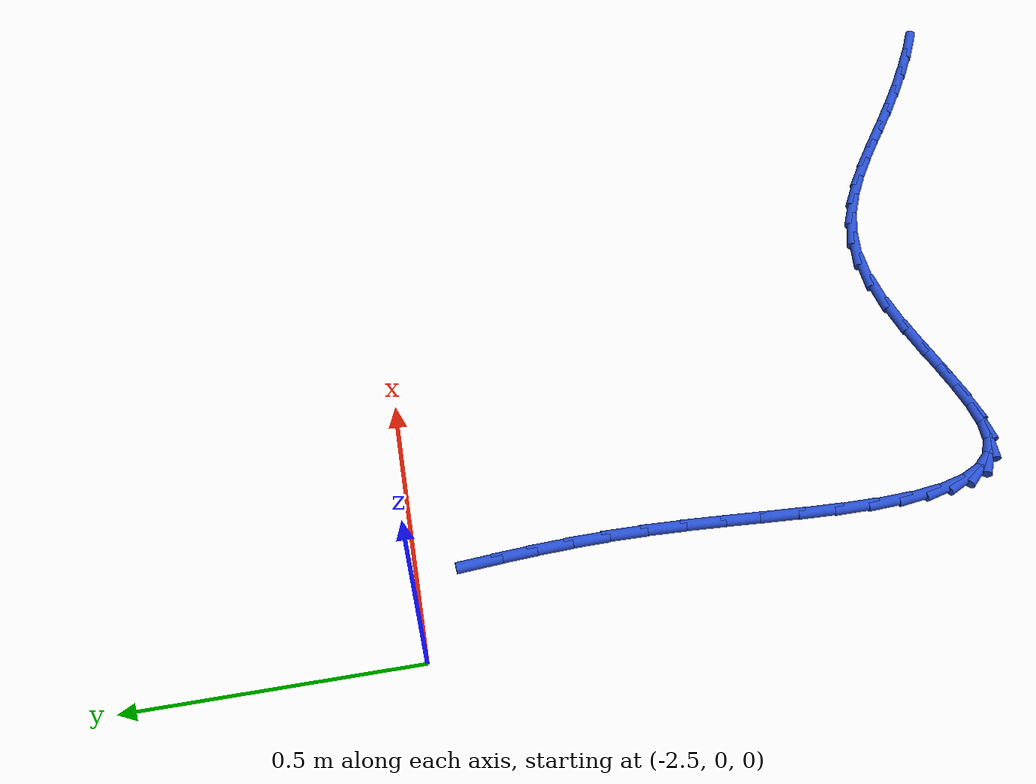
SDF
<sdf version="1.6">
 <world name="default">
  <model name="ground_plane">
   <static>1</static>
   <link name="link">
    <collision name="collision">
     <geometry><plane><normal>0 0 1</normal><size>100 100</size></plane></geometry>
     <surface><friction><ode><mu>100</mu><mu2>50</mu2></ode></friction></surface>
    </collision>
    <visual name="visual">
     <cast_shadows>0</cast_shadows>
     <geometry><plane><normal>0 0 1</normal><size>100 100</size></plane></geometry>
     <material>
      <script><uri>file://media/materials/scripts/gazebo.material</uri><name>Gazebo/WhiteGlow</name></script>
     </material>
    </visual>
   </link>
  </model>
  <model name="line">
   <link name="link_74">
    <pose>-2.3392976931830742 -0.10666497739842304 0.01 0 1.57 -1.4933494946444272</pose>
    <collision name="collision">
     <geometry><cylinder><radius>0.01</radius><length>0.08</length></cylinder></geometry>
    </collision>
    <visual name="visual">
     <material>
      <script><name>Gazebo/Blue</name><uri>file://media/materials/scripts/gazebo.material</uri></script>
     </material>
     <geometry><cylinder><radius>0.01</radius><length>0.08</length></cylinder></geometry>
    </visual>
   </link>
   <link name="link_75">
    <pose>-2.334602497027382 -0.16716848656856312 0.01 0 1.57 -1.5092627261936897</pose>
    <collision name="collision">
     <geometry><cylinder><radius>0.01</radius><length>0.08</length></cylinder></geometry>
    </collision>
    <visual name="visual">
     <material>
      <script><name>Gazebo/Blue</name><uri>file://media/materials/scripts/gazebo.material</uri></script>
     </material>
     <geometry><cylinder><radius>0.01</radius><length>0.08</length></cylinder></geometry>
    </visual>
   </link>
   <link name="link_76">
    <pose>-2.330763917438993 -0.22947157868022855 0.01 0 1.57 -1.530009776665142</pose>
    <collision name="collision">
     <geometry><cylinder><radius>0.01</radius><length>0.08</length></cylinder></geometry>
    </collision>
    <visual name="visual">
     <material>
      <script><name>Gazebo/Blue</name><uri>file://media/materials/scripts/gazebo.material</uri></script>
     </material>
     <geometry><cylinder><radius>0.01</radius><length>0.08</length></cylinder></geometry>
    </visual>
   </link>
   <link name="link_77">
    <pose>-2.3281464975574853 -0.29360959269813164 0.01 0 1.57 -1.5551674827939042</pose>
    <collision name="collision">
     <geometry><cylinder><radius>0.01</radius><length>0.08</length></cylinder></geometry>
    </collision>
    <visual name="visual">
     <material>
      <script><name>Gazebo/Blue</name><uri>file://media/materials/scripts/gazebo.material</uri></script>
     </material>
     <geometry><cylinder><radius>0.01</radius><length>0.08</length></cylinder></geometry>
    </visual>
   </link>
   <link name="link_78">
    <pose>-2.327114780522441 -0.3596178675869841 0.01 0 1.57 1.55745078624713</pose>
    <collision name="collision">
     <geometry><cylinder><radius>0.01</radius><length>0.08</length></cylinder></geometry>
    </collision>
    <visual name="visual">
     <material>
      <script><name>Gazebo/Blue</name><uri>file://media/materials/scripts/gazebo.material</uri></script>
     </material>
     <geometry><cylinder><radius>0.01</radius><length>0.08</length></cylinder></geometry>
    </visual>
   </link>
   <link name="link_79">
    <pose>-2.328021019264337 -0.4275195712757638 0.01 0 1.57 1.5316532512382517</pose>
    <collision name="collision">
     <geometry><cylinder><radius>0.01</radius><length>0.08</length></cylinder></geometry>
    </collision>
    <visual name="visual">
     <material>
      <script><name>Gazebo/Blue</name><uri>file://media/materials/scripts/gazebo.material</uri></script>
     </material>
     <geometry><cylinder><radius>0.01</radius><length>0.08</length></cylinder></geometry>
    </visual>
   </link>
   <link name="link_80">
    <pose>-2.3307366720785 -0.49686173913643933 0.01 0 1.57 1.5167643529252266</pose>
    <collision name="collision">
     <geometry><cylinder><radius>0.01</radius><length>0.08</length></cylinder></geometry>
    </collision>
    <visual name="visual">
     <material>
      <script><name>Gazebo/Blue</name><uri>file://media/materials/scripts/gazebo.material</uri></script>
     </material>
     <geometry><cylinder><radius>0.01</radius><length>0.08</length></cylinder></geometry>
    </visual>
   </link>
   <link name="link_81">
    <pose>-2.33450687948605 -0.5665711619260696 0.01 0 1.57 1.5124554049348993</pose>
    <collision name="collision">
     <geometry><cylinder><radius>0.01</radius><length>0.08</length></cylinder></geometry>
    </collision>
    <visual name="visual">
     <material>
      <script><name>Gazebo/Blue</name><uri>file://media/materials/scripts/gazebo.material</uri></script>
     </material>
     <geometry><cylinder><radius>0.01</radius><length>0.08</length></cylinder></geometry>
    </visual>
   </link>
   <link name="link_82">
    <pose>-2.338534747785223 -0.6355330037683017 0.01 0 1.57 1.518851066210437</pose>
    <collision name="collision">
     <geometry><cylinder><radius>0.01</radius><length>0.08</length></cylinder></geometry>
    </collision>
    <visual name="visual">
     <material>
      <script><name>Gazebo/Blue</name><uri>file://media/materials/scripts/gazebo.material</uri></script>
     </material>
     <geometry><cylinder><radius>0.01</radius><length>0.08</length></cylinder></geometry>
    </visual>
   </link>
   <link name="link_83">
    <pose>-2.342023383274261 -0.7026324287867841 0.01 0 1.57 1.5372400557956143</pose>
    <collision name="collision">
     <geometry><cylinder><radius>0.01</radius><length>0.08</length></cylinder></geometry>
    </collision>
    <visual name="visual">
     <material>
      <script><name>Gazebo/Blue</name><uri>file://media/materials/scripts/gazebo.material</uri></script>
     </material>
     <geometry><cylinder><radius>0.01</radius><length>0.08</length></cylinder></geometry>
    </visual>
   </link>
   <link name="link_84">
    <pose>-2.3441758922513993 -0.7667546011051674 0.01 0 1.57 1.570471676859739</pose>
    <collision name="collision">
     <geometry><cylinder><radius>0.01</radius><length>0.08</length></cylinder></geometry>
    </collision>
    <visual name="visual">
     <material>
      <script><name>Gazebo/Blue</name><uri>file://media/materials/scripts/gazebo.material</uri></script>
     </material>
     <geometry><cylinder><radius>0.01</radius><length>0.08</length></cylinder></geometry>
    </visual>
   </link>
   <link name="link_85">
    <pose>-2.3441953810148783 -0.8267846848470987 0.01 0 1.57 -1.5177586020661384</pose>
    <collision name="collision">
     <geometry><cylinder><radius>0.01</radius><length>0.08</length></cylinder></geometry>
    </collision>
    <visual name="visual">
     <material>
      <script><name>Gazebo/Blue</name><uri>file://media/materials/scripts/gazebo.material</uri></script>
     </material>
     <geometry><cylinder><radius>0.01</radius><length>0.08</length></cylinder></geometry>
    </visual>
   </link>
   <link name="link_86">
    <pose>-2.3412849558629354 -0.8816078441362282 0.01 0 1.57 -1.4347948766053573</pose>
    <collision name="collision">
     <geometry><cylinder><radius>0.01</radius><length>0.08</length></cylinder></geometry>
    </collision>
    <visual name="visual">
     <material>
      <script><name>Gazebo/Blue</name><uri>file://media/materials/scripts/gazebo.material</uri></script>
     </material>
     <geometry><cylinder><radius>0.01</radius><length>0.08</length></cylinder></geometry>
    </visual>
   </link>
   <link name="link_87">
    <pose>-2.3346477230938096 -0.9301092430962045 0.01 0 1.57 -1.3054184264576614</pose>
    <collision name="collision">
     <geometry><cylinder><radius>0.01</radius><length>0.08</length></cylinder></geometry>
    </collision>
    <visual name="visual">
     <material>
      <script><name>Gazebo/Blue</name><uri>file://media/materials/scripts/gazebo.material</uri></script>
     </material>
     <geometry><cylinder><radius>0.01</radius><length>0.08</length></cylinder></geometry>
    </visual>
   </link>
   <link name="link_88">
    <pose>-2.32348678900574 -0.9711740458506755 0.01 0 1.57 -1.1016316950433602</pose>
    <collision name="collision">
     <geometry><cylinder><radius>0.01</radius><length>0.08</length></cylinder></geometry>
    </collision>
    <visual name="visual">
     <material>
      <script><name>Gazebo/Blue</name><uri>file://media/materials/scripts/gazebo.material</uri></script>
     </material>
     <geometry><cylinder><radius>0.01</radius><length>0.08</length></cylinder></geometry>
    </visual>
   </link>
   <link name="link_89">
    <pose>-2.3070052598969633 -1.003687416523291 0.01 0 1.57 -0.7908569883966381</pose>
    <collision name="collision">
     <geometry><cylinder><radius>0.01</radius><length>0.08</length></cylinder></geometry>
    </collision>
    <visual name="visual">
     <material>
      <script><name>Gazebo/Blue</name><uri>file://media/materials/scripts/gazebo.material</uri></script>
     </material>
     <geometry><cylinder><radius>0.01</radius><length>0.08</length></cylinder></geometry>
    </visual>
   </link>
   <link name="link_90">
    <pose>-2.2844062420657187 -1.0265345192376993 0.01 0 1.57 -0.3880994830792183</pose>
    <collision name="collision">
     <geometry><cylinder><radius>0.01</radius><length>0.08</length></cylinder></geometry>
    </collision>
    <visual name="visual">
     <material>
      <script><name>Gazebo/Blue</name><uri>file://media/materials/scripts/gazebo.material</uri></script>
     </material>
     <geometry><cylinder><radius>0.01</radius><length>0.08</length></cylinder></geometry>
    </visual>
   </link>
   <link name="link_91">
    <pose>-2.2548928931723404 -1.038600609432451 0.01 0 1.57 -0.023858899915953167</pose>
    <collision name="collision">
     <geometry><cylinder><radius>0.01</radius><length>0.08</length></cylinder></geometry>
    </collision>
    <visual name="visual">
     <material>
      <script><name>Gazebo/Blue</name><uri>file://media/materials/scripts/gazebo.material</uri></script>
     </material>
     <geometry><cylinder><radius>0.01</radius><length>0.08</length></cylinder></geometry>
    </visual>
   </link>
   <link name="link_92">
    <pose>-2.2180668612019536 -1.0394794048004357 0.01 0 1.57 0.189862802182624</pose>
    <collision name="collision">
     <geometry><cylinder><radius>0.01</radius><length>0.08</length></cylinder></geometry>
    </collision>
    <visual name="visual">
     <material>
      <script><name>Gazebo/Blue</name><uri>file://media/materials/scripts/gazebo.material</uri></script>
     </material>
     <geometry><cylinder><radius>0.01</radius><length>0.08</length></cylinder></geometry>
    </visual>
   </link>
   <link name="link_93">
    <pose>-2.17488930269319 -1.0311816465723187 0.01 0 1.57 0.30027140485685966</pose>
    <collision name="collision">
     <geometry><cylinder><radius>0.01</radius><length>0.08</length></cylinder></geometry>
    </collision>
    <visual name="visual">
     <material>
      <script><name>Gazebo/Blue</name><uri>file://media/materials/scripts/gazebo.material</uri></script>
     </material>
     <geometry><cylinder><radius>0.01</radius><length>0.08</length></cylinder></geometry>
    </visual>
   </link>
   <link name="link_94">
    <pose>-2.126611046134841 -1.0162330737843865 0.01 0 1.57 0.35076825966194974</pose>
    <collision name="collision">
     <geometry><cylinder><radius>0.01</radius><length>0.08</length></cylinder></geometry>
    </collision>
    <visual name="visual">
     <material>
      <script><name>Gazebo/Blue</name><uri>file://media/materials/scripts/gazebo.material</uri></script>
     </material>
     <geometry><cylinder><radius>0.01</radius><length>0.08</length></cylinder></geometry>
    </visual>
   </link>
   <link name="link_95">
    <pose>-2.0744829200156993 -0.9971594254729241 0.01 0 1.57 0.3611762068760858</pose>
    <collision name="collision">
     <geometry><cylinder><radius>0.01</radius><length>0.08</length></cylinder></geometry>
    </collision>
    <visual name="visual">
     <material>
      <script><name>Gazebo/Blue</name><uri>file://media/materials/scripts/gazebo.material</uri></script>
     </material>
     <geometry><cylinder><radius>0.01</radius><length>0.08</length></cylinder></geometry>
    </visual>
   </link>
   <link name="link_96">
    <pose>-2.0197557528245578 -0.9764864406742187 0.01 0 1.57 0.33858314628906944</pose>
    <collision name="collision">
     <geometry><cylinder><radius>0.01</radius><length>0.08</length></cylinder></geometry>
    </collision>
    <visual name="visual">
     <material>
      <script><name>Gazebo/Blue</name><uri>file://media/materials/scripts/gazebo.material</uri></script>
     </material>
     <geometry><cylinder><radius>0.01</radius><length>0.08</length></cylinder></geometry>
    </visual>
   </link>
   <link name="link_97">
    <pose>-1.963680373050208 -0.9567398584245557 0.01 0 1.57 0.2823286744295047</pose>
    <collision name="collision">
     <geometry><cylinder><radius>0.01</radius><length>0.08</length></cylinder></geometry>
    </collision>
    <visual name="visual">
     <material>
      <script><name>Gazebo/Blue</name><uri>file://media/materials/scripts/gazebo.material</uri></script>
     </material>
     <geometry><cylinder><radius>0.01</radius><length>0.08</length></cylinder></geometry>
    </visual>
   </link>
   <link name="link_98">
    <pose>-1.9075076091814436 -0.9404454177602213 0.01 0 1.57 0.18535563415789003</pose>
    <collision name="collision">
     <geometry><cylinder><radius>0.01</radius><length>0.08</length></cylinder></geometry>
    </collision>
    <visual name="visual">
     <material>
      <script><name>Gazebo/Blue</name><uri>file://media/materials/scripts/gazebo.material</uri></script>
     </material>
     <geometry><cylinder><radius>0.01</radius><length>0.08</length></cylinder></geometry>
    </visual>
   </link>
   <link name="link_99">
    <pose>-1.8524882897070545 -0.930128857717501 0.01 0 1.57 0.03767120536752102</pose>
    <collision name="collision">
     <geometry><cylinder><radius>0.01</radius><length>0.08</length></cylinder></geometry>
    </collision>
    <visual name="visual">
     <material>
      <script><name>Gazebo/Blue</name><uri>file://media/materials/scripts/gazebo.material</uri></script>
     </material>
     <geometry><cylinder><radius>0.01</radius><length>0.08</length></cylinder></geometry>
    </visual>
   </link>
   <link name="link_100">
    <pose>-1.79979146486451 -0.9281427652167378 0.01 0 1.57 -0.12991750881663697</pose>
    <collision name="collision">
     <geometry><cylinder><radius>0.01</radius><length>0.08</length></cylinder></geometry>
    </collision>
    <visual name="visual">
     <material>
      <script><name>Gazebo/Blue</name><uri>file://media/materials/scripts/gazebo.material</uri></script>
     </material>
     <geometry><cylinder><radius>0.01</radius><length>0.08</length></cylinder></geometry>
    </visual>
   </link>
   <link name="link_101">
    <pose>-1.749577228643055 -0.9347034267995861 0.01 0 1.57 -0.2801842022449353</pose>
    <collision name="collision">
     <geometry><cylinder><radius>0.01</radius><length>0.08</length></cylinder></geometry>
    </collision>
    <visual name="visual">
     <material>
      <script><name>Gazebo/Blue</name><uri>file://media/materials/scripts/gazebo.material</uri></script>
     </material>
     <geometry><cylinder><radius>0.01</radius><length>0.08</length></cylinder></geometry>
    </visual>
   </link>
   <link name="link_102">
    <pose>-1.7013259467012993 -0.9485879150747873 0.01 0 1.57 -0.4029506564800169</pose>
    <collision name="collision">
     <geometry><cylinder><radius>0.01</radius><length>0.08</length></cylinder></geometry>
    </collision>
    <visual name="visual">
     <material>
      <script><name>Gazebo/Blue</name><uri>file://media/materials/scripts/gazebo.material</uri></script>
     </material>
     <geometry><cylinder><radius>0.01</radius><length>0.08</length></cylinder></geometry>
    </visual>
   </link>
   <link name="link_103">
    <pose>-1.654505289316738 -0.9685464222511327 0.01 0 1.57 -0.4948743058353372</pose>
    <collision name="collision">
     <geometry><cylinder><radius>0.01</radius><length>0.08</length></cylinder></geometry>
    </collision>
    <visual name="visual">
     <material>
      <script><name>Gazebo/Blue</name><uri>file://media/materials/scripts/gazebo.material</uri></script>
     </material>
     <geometry><cylinder><radius>0.01</radius><length>0.08</length></cylinder></geometry>
    </visual>
   </link>
   <link name="link_104">
    <pose>-1.608582926766866 -0.9933291405374126 0.01 0 1.57 -0.5567720808523011</pose>
    <collision name="collision">
     <geometry><cylinder><radius>0.01</radius><length>0.08</length></cylinder></geometry>
    </collision>
    <visual name="visual">
     <material>
      <script><name>Gazebo/Blue</name><uri>file://media/materials/scripts/gazebo.material</uri></script>
     </material>
     <geometry><cylinder><radius>0.01</radius><length>0.08</length></cylinder></geometry>
    </visual>
   </link>
   <link name="link_105">
    <pose>-1.5630265293291774 -1.0216862621424194 0.01 0 1.57 -0.5910229041675557</pose>
    <collision name="collision">
     <geometry><cylinder><radius>0.01</radius><length>0.08</length></cylinder></geometry>
    </collision>
    <visual name="visual">
     <material>
      <script><name>Gazebo/Blue</name><uri>file://media/materials/scripts/gazebo.material</uri></script>
     </material>
     <geometry><cylinder><radius>0.01</radius><length>0.08</length></cylinder></geometry>
    </visual>
   </link>
   <link name="link_106">
    <pose>-1.5173037672811673 -1.0523679792749427 0.01 0 1.57 -0.5999688595193906</pose>
    <collision name="collision">
     <geometry><cylinder><radius>0.01</radius><length>0.08</length></cylinder></geometry>
    </collision>
    <visual name="visual">
     <material>
      <script><name>Gazebo/Blue</name><uri>file://media/materials/scripts/gazebo.material</uri></script>
     </material>
     <geometry><cylinder><radius>0.01</radius><length>0.08</length></cylinder></geometry>
    </visual>
   </link>
   <link name="link_107">
    <pose>-1.4708823109003302 -1.0841244841437756 0.01 0 1.57 -0.5853732621717056</pose>
    <collision name="collision">
     <geometry><cylinder><radius>0.01</radius><length>0.08</length></cylinder></geometry>
    </collision>
    <visual name="visual">
     <material>
      <script><name>Gazebo/Blue</name><uri>file://media/materials/scripts/gazebo.material</uri></script>
     </material>
     <geometry><cylinder><radius>0.01</radius><length>0.08</length></cylinder></geometry>
    </visual>
   </link>
   <link name="link_108">
    <pose>-1.4232336062238962 -1.1157096367020578 0.01 0 1.57 -0.555068356757433</pose>
    <collision name="collision">
     <geometry><cylinder><radius>0.01</radius><length>0.08</length></cylinder></geometry>
    </collision>
    <visual name="visual">
     <material>
      <script><name>Gazebo/Blue</name><uri>file://media/materials/scripts/gazebo.material</uri></script>
     </material>
     <geometry><cylinder><radius>0.01</radius><length>0.08</length></cylinder></geometry>
    </visual>
   </link>
   <link name="link_109">
    <pose>-1.3741232267944927 -1.1461630101293185 0.01 0 1.57 -0.5206408994084673</pose>
    <collision name="collision">
     <geometry><cylinder><radius>0.01</radius><length>0.08</length></cylinder></geometry>
    </collision>
    <visual name="visual">
     <material>
      <script><name>Gazebo/Blue</name><uri>file://media/materials/scripts/gazebo.material</uri></script>
     </material>
     <geometry><cylinder><radius>0.01</radius><length>0.08</length></cylinder></geometry>
    </visual>
   </link>
   <link name="link_110">
    <pose>-1.3238164442809537 -1.1750095805723006 0.01 0 1.57 -0.4824891064251065</pose>
    <collision name="collision">
     <geometry><cylinder><radius>0.01</radius><length>0.08</length></cylinder></geometry>
    </collision>
    <visual name="visual">
     <material>
      <script><name>Gazebo/Blue</name><uri>file://media/materials/scripts/gazebo.material</uri></script>
     </material>
     <geometry><cylinder><radius>0.01</radius><length>0.08</length></cylinder></geometry>
    </visual>
   </link>
   <link name="link_111">
    <pose>-1.2726270761554106 -1.2018214812026191 0.01 0 1.57 -0.43972542987073115</pose>
    <collision name="collision">
     <geometry><cylinder><radius>0.01</radius><length>0.08</length></cylinder></geometry>
    </collision>
    <visual name="visual">
     <material>
      <script><name>Gazebo/Blue</name><uri>file://media/materials/scripts/gazebo.material</uri></script>
     </material>
     <geometry><cylinder><radius>0.01</radius><length>0.08</length></cylinder></geometry>
    </visual>
   </link>
  </model>
 </world>
</sdf>
